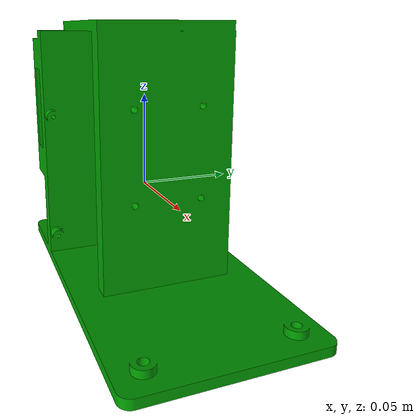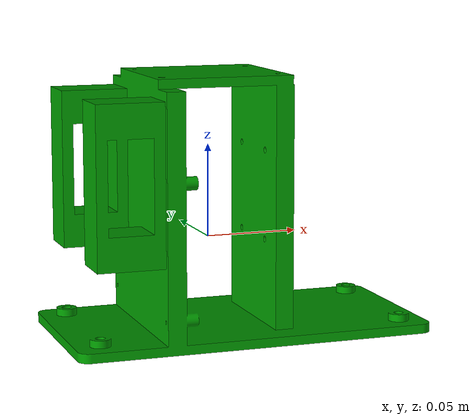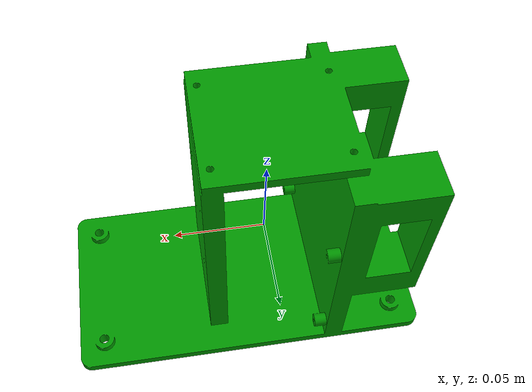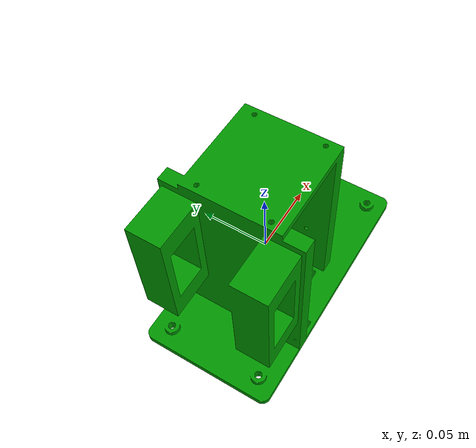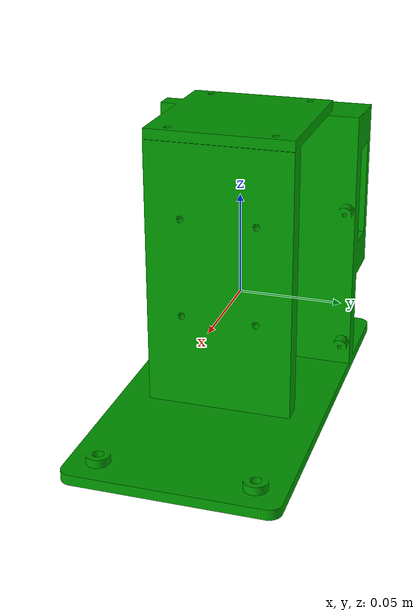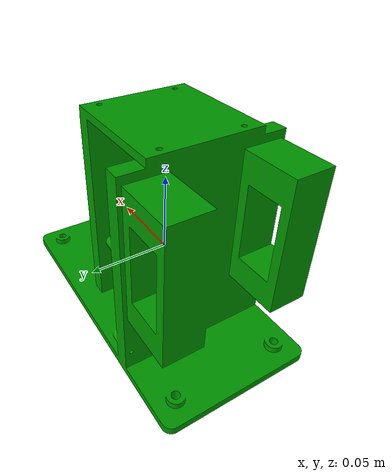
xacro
<?xml version="1.0"?>
<robot xmlns:xacro="http://www.ros.org/wiki/xacro">

  <!-- ═══════════════════════════════════════════════════════════
       BASE LINK (Jetson Orin Nano)
  ═══════════════════════════════════════════════════════════ -->

  <link name="base_link">
    <visual>
      <origin xyz="0 0 0" rpy="0 0 0"/>
      <geometry>
        <mesh filename="package://jig_description/meshes/jig_base_v2.stl"
              scale="0.001 0.001 0.001"/>
      </geometry>
      <material name="green">
        <color rgba="0.0 0.6 0.0 1.0"/>
      </material>
    </visual>
    <collision>
      <origin xyz="0 0 0" rpy="0 0 0"/>
      <geometry>
        <mesh filename="package://jig_description/meshes/jig_base_v2.stl"
              scale="0.001 0.001 0.001"/>
      </geometry>
    </collision>
    <inertial>
      <origin xyz="0 0 0" rpy="0 0 0"/>
      <mass value="0.5"/>
      <inertia ixx="0.01" ixy="0" ixz="0"
               iyy="0.01" iyz="0" izz="0.01"/>
    </inertial>
  </link>

</robot>
